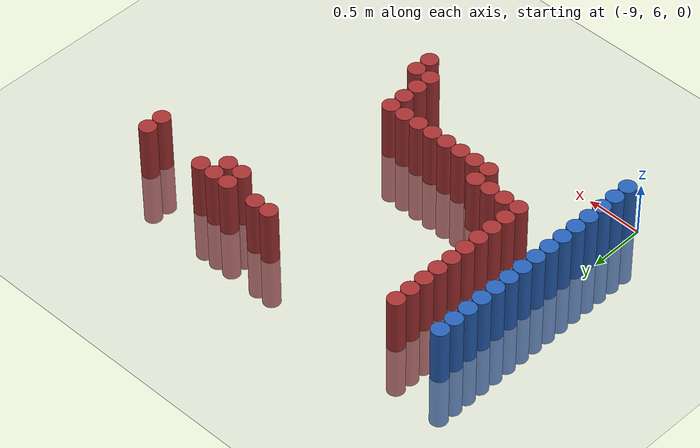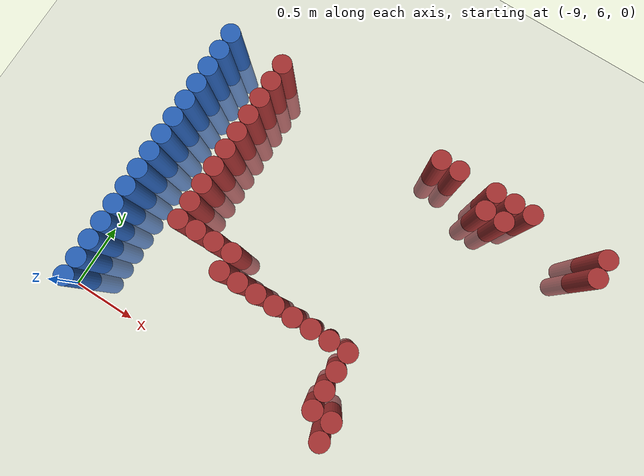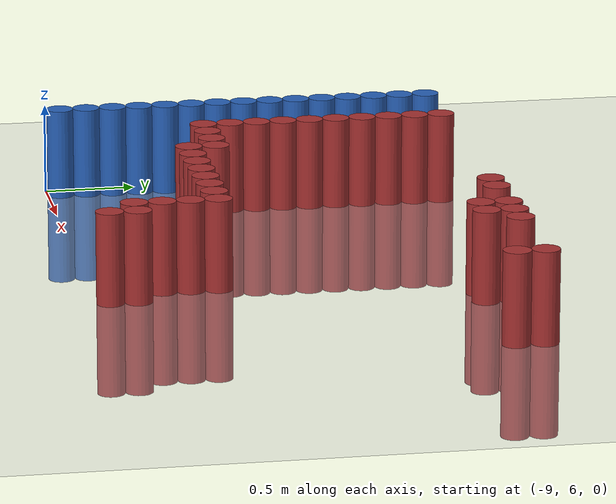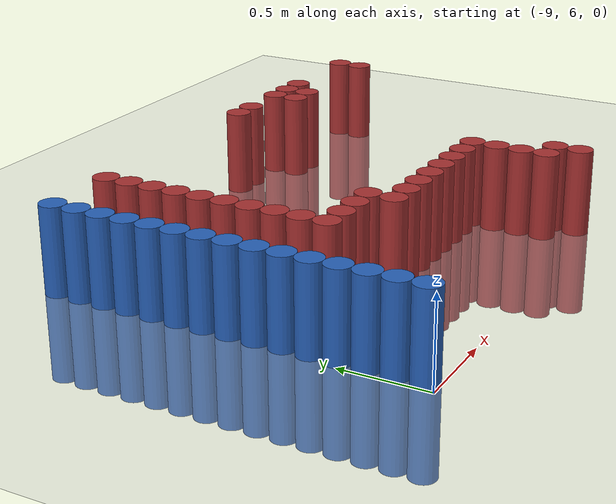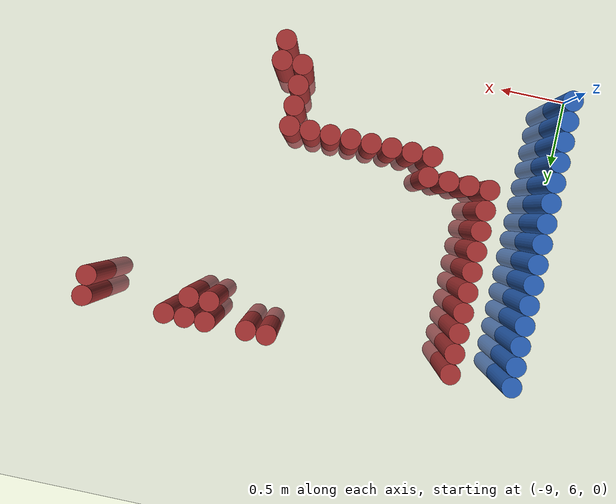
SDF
<sdf version="1.6">
 <world name="default">
  <model name="ground_plane">
   <static>1</static>
   <link name="link">
    <collision name="collision">
     <geometry><plane><normal>0 0 1</normal><size>100 100</size></plane></geometry>
     <surface><friction><ode><mu>100</mu><mu2>50</mu2></ode></friction></surface>
    </collision>
    <visual name="visual">
     <cast_shadows>0</cast_shadows>
     <geometry><plane><normal>0 0 1</normal><size>100 100</size></plane></geometry>
     <material>
      <script><uri>file://media/materials/scripts/gazebo.material</uri><name>Gazebo/Grey</name></script>
     </material>
    </visual>
   </link>
  </model>
  <model name="unit_cylinder_131">
   <static>1</static>
   <pose>-8.925000 6.075000 0.000000 0.000000 0.000000 0.000000</pose>
   <link name="link">
    <inertial>
     <mass>1</mass>
     <inertia><ixx>0.145833</ixx><ixy>0</ixy><ixz>0</ixz><iyy>0.145833</iyy><iyz>0</iyz><izz>0.125</izz></inertia>
    </inertial>
    <collision name="collision">
     <geometry><cylinder><radius>0.075000</radius><length>1</length></cylinder></geometry>
    </collision>
    <visual name="visual">
     <geometry><cylinder><radius>0.075000</radius><length>1</length></cylinder></geometry>
     <material>
      <ambient>0.152000 0.379000 0.720000 1</ambient>
      <diffuse>0.152000 0.379000 0.720000 1</diffuse>
     </material>
     <material>
      <script><name>Gazebo/Grey</name><uri>file://media/materials/scripts/gazebo.material</uri></script>
     </material>
    </visual>
   </link>
  </model>
  <model name="unit_cylinder_132">
   <static>1</static>
   <pose>-8.925000 6.225000 0.000000 0.000000 0.000000 0.000000</pose>
   <link name="link">
    <inertial>
     <mass>1</mass>
     <inertia><ixx>0.145833</ixx><ixy>0</ixy><ixz>0</ixz><iyy>0.145833</iyy><iyz>0</iyz><izz>0.125</izz></inertia>
    </inertial>
    <collision name="collision">
     <geometry><cylinder><radius>0.075000</radius><length>1</length></cylinder></geometry>
    </collision>
    <visual name="visual">
     <geometry><cylinder><radius>0.075000</radius><length>1</length></cylinder></geometry>
     <material>
      <ambient>0.152000 0.379000 0.720000 1</ambient>
      <diffuse>0.152000 0.379000 0.720000 1</diffuse>
     </material>
     <material>
      <script><name>Gazebo/Grey</name><uri>file://media/materials/scripts/gazebo.material</uri></script>
     </material>
    </visual>
   </link>
  </model>
  <model name="unit_cylinder_133">
   <static>1</static>
   <pose>-8.925000 6.375000 0.000000 0.000000 0.000000 0.000000</pose>
   <link name="link">
    <inertial>
     <mass>1</mass>
     <inertia><ixx>0.145833</ixx><ixy>0</ixy><ixz>0</ixz><iyy>0.145833</iyy><iyz>0</iyz><izz>0.125</izz></inertia>
    </inertial>
    <collision name="collision">
     <geometry><cylinder><radius>0.075000</radius><length>1</length></cylinder></geometry>
    </collision>
    <visual name="visual">
     <geometry><cylinder><radius>0.075000</radius><length>1</length></cylinder></geometry>
     <material>
      <ambient>0.152000 0.379000 0.720000 1</ambient>
      <diffuse>0.152000 0.379000 0.720000 1</diffuse>
     </material>
     <material>
      <script><name>Gazebo/Grey</name><uri>file://media/materials/scripts/gazebo.material</uri></script>
     </material>
    </visual>
   </link>
  </model>
  <model name="unit_cylinder_134">
   <static>1</static>
   <pose>-8.925000 6.525000 0.000000 0.000000 0.000000 0.000000</pose>
   <link name="link">
    <inertial>
     <mass>1</mass>
     <inertia><ixx>0.145833</ixx><ixy>0</ixy><ixz>0</ixz><iyy>0.145833</iyy><iyz>0</iyz><izz>0.125</izz></inertia>
    </inertial>
    <collision name="collision">
     <geometry><cylinder><radius>0.075000</radius><length>1</length></cylinder></geometry>
    </collision>
    <visual name="visual">
     <geometry><cylinder><radius>0.075000</radius><length>1</length></cylinder></geometry>
     <material>
      <ambient>0.152000 0.379000 0.720000 1</ambient>
      <diffuse>0.152000 0.379000 0.720000 1</diffuse>
     </material>
     <material>
      <script><name>Gazebo/Grey</name><uri>file://media/materials/scripts/gazebo.material</uri></script>
     </material>
    </visual>
   </link>
  </model>
  <model name="unit_cylinder_135">
   <static>1</static>
   <pose>-8.925000 6.675000 0.000000 0.000000 0.000000 0.000000</pose>
   <link name="link">
    <inertial>
     <mass>1</mass>
     <inertia><ixx>0.145833</ixx><ixy>0</ixy><ixz>0</ixz><iyy>0.145833</iyy><iyz>0</iyz><izz>0.125</izz></inertia>
    </inertial>
    <collision name="collision">
     <geometry><cylinder><radius>0.075000</radius><length>1</length></cylinder></geometry>
    </collision>
    <visual name="visual">
     <geometry><cylinder><radius>0.075000</radius><length>1</length></cylinder></geometry>
     <material>
      <ambient>0.152000 0.379000 0.720000 1</ambient>
      <diffuse>0.152000 0.379000 0.720000 1</diffuse>
     </material>
     <material>
      <script><name>Gazebo/Grey</name><uri>file://media/materials/scripts/gazebo.material</uri></script>
     </material>
    </visual>
   </link>
  </model>
  <model name="unit_cylinder_136">
   <static>1</static>
   <pose>-8.925000 6.825000 0.000000 0.000000 0.000000 0.000000</pose>
   <link name="link">
    <inertial>
     <mass>1</mass>
     <inertia><ixx>0.145833</ixx><ixy>0</ixy><ixz>0</ixz><iyy>0.145833</iyy><iyz>0</iyz><izz>0.125</izz></inertia>
    </inertial>
    <collision name="collision">
     <geometry><cylinder><radius>0.075000</radius><length>1</length></cylinder></geometry>
    </collision>
    <visual name="visual">
     <geometry><cylinder><radius>0.075000</radius><length>1</length></cylinder></geometry>
     <material>
      <ambient>0.152000 0.379000 0.720000 1</ambient>
      <diffuse>0.152000 0.379000 0.720000 1</diffuse>
     </material>
     <material>
      <script><name>Gazebo/Grey</name><uri>file://media/materials/scripts/gazebo.material</uri></script>
     </material>
    </visual>
   </link>
  </model>
  <model name="unit_cylinder_137">
   <static>1</static>
   <pose>-8.925000 6.975000 0.000000 0.000000 0.000000 0.000000</pose>
   <link name="link">
    <inertial>
     <mass>1</mass>
     <inertia><ixx>0.145833</ixx><ixy>0</ixy><ixz>0</ixz><iyy>0.145833</iyy><iyz>0</iyz><izz>0.125</izz></inertia>
    </inertial>
    <collision name="collision">
     <geometry><cylinder><radius>0.075000</radius><length>1</length></cylinder></geometry>
    </collision>
    <visual name="visual">
     <geometry><cylinder><radius>0.075000</radius><length>1</length></cylinder></geometry>
     <material>
      <ambient>0.152000 0.379000 0.720000 1</ambient>
      <diffuse>0.152000 0.379000 0.720000 1</diffuse>
     </material>
     <material>
      <script><name>Gazebo/Grey</name><uri>file://media/materials/scripts/gazebo.material</uri></script>
     </material>
    </visual>
   </link>
  </model>
  <model name="unit_cylinder_138">
   <static>1</static>
   <pose>-8.925000 7.125000 0.000000 0.000000 0.000000 0.000000</pose>
   <link name="link">
    <inertial>
     <mass>1</mass>
     <inertia><ixx>0.145833</ixx><ixy>0</ixy><ixz>0</ixz><iyy>0.145833</iyy><iyz>0</iyz><izz>0.125</izz></inertia>
    </inertial>
    <collision name="collision">
     <geometry><cylinder><radius>0.075000</radius><length>1</length></cylinder></geometry>
    </collision>
    <visual name="visual">
     <geometry><cylinder><radius>0.075000</radius><length>1</length></cylinder></geometry>
     <material>
      <ambient>0.152000 0.379000 0.720000 1</ambient>
      <diffuse>0.152000 0.379000 0.720000 1</diffuse>
     </material>
     <material>
      <script><name>Gazebo/Grey</name><uri>file://media/materials/scripts/gazebo.material</uri></script>
     </material>
    </visual>
   </link>
  </model>
  <model name="unit_cylinder_139">
   <static>1</static>
   <pose>-8.925000 7.275000 0.000000 0.000000 0.000000 0.000000</pose>
   <link name="link">
    <inertial>
     <mass>1</mass>
     <inertia><ixx>0.145833</ixx><ixy>0</ixy><ixz>0</ixz><iyy>0.145833</iyy><iyz>0</iyz><izz>0.125</izz></inertia>
    </inertial>
    <collision name="collision">
     <geometry><cylinder><radius>0.075000</radius><length>1</length></cylinder></geometry>
    </collision>
    <visual name="visual">
     <geometry><cylinder><radius>0.075000</radius><length>1</length></cylinder></geometry>
     <material>
      <ambient>0.152000 0.379000 0.720000 1</ambient>
      <diffuse>0.152000 0.379000 0.720000 1</diffuse>
     </material>
     <material>
      <script><name>Gazebo/Grey</name><uri>file://media/materials/scripts/gazebo.material</uri></script>
     </material>
    </visual>
   </link>
  </model>
  <model name="unit_cylinder_140">
   <static>1</static>
   <pose>-8.925000 7.425000 0.000000 0.000000 0.000000 0.000000</pose>
   <link name="link">
    <inertial>
     <mass>1</mass>
     <inertia><ixx>0.145833</ixx><ixy>0</ixy><ixz>0</ixz><iyy>0.145833</iyy><iyz>0</iyz><izz>0.125</izz></inertia>
    </inertial>
    <collision name="collision">
     <geometry><cylinder><radius>0.075000</radius><length>1</length></cylinder></geometry>
    </collision>
    <visual name="visual">
     <geometry><cylinder><radius>0.075000</radius><length>1</length></cylinder></geometry>
     <material>
      <ambient>0.152000 0.379000 0.720000 1</ambient>
      <diffuse>0.152000 0.379000 0.720000 1</diffuse>
     </material>
     <material>
      <script><name>Gazebo/Grey</name><uri>file://media/materials/scripts/gazebo.material</uri></script>
     </material>
    </visual>
   </link>
  </model>
  <model name="unit_cylinder_141">
   <static>1</static>
   <pose>-8.925000 7.575000 0.000000 0.000000 0.000000 0.000000</pose>
   <link name="link">
    <inertial>
     <mass>1</mass>
     <inertia><ixx>0.145833</ixx><ixy>0</ixy><ixz>0</ixz><iyy>0.145833</iyy><iyz>0</iyz><izz>0.125</izz></inertia>
    </inertial>
    <collision name="collision">
     <geometry><cylinder><radius>0.075000</radius><length>1</length></cylinder></geometry>
    </collision>
    <visual name="visual">
     <geometry><cylinder><radius>0.075000</radius><length>1</length></cylinder></geometry>
     <material>
      <ambient>0.152000 0.379000 0.720000 1</ambient>
      <diffuse>0.152000 0.379000 0.720000 1</diffuse>
     </material>
     <material>
      <script><name>Gazebo/Grey</name><uri>file://media/materials/scripts/gazebo.material</uri></script>
     </material>
    </visual>
   </link>
  </model>
  <model name="unit_cylinder_142">
   <static>1</static>
   <pose>-8.925000 7.725000 0.000000 0.000000 0.000000 0.000000</pose>
   <link name="link">
    <inertial>
     <mass>1</mass>
     <inertia><ixx>0.145833</ixx><ixy>0</ixy><ixz>0</ixz><iyy>0.145833</iyy><iyz>0</iyz><izz>0.125</izz></inertia>
    </inertial>
    <collision name="collision">
     <geometry><cylinder><radius>0.075000</radius><length>1</length></cylinder></geometry>
    </collision>
    <visual name="visual">
     <geometry><cylinder><radius>0.075000</radius><length>1</length></cylinder></geometry>
     <material>
      <ambient>0.152000 0.379000 0.720000 1</ambient>
      <diffuse>0.152000 0.379000 0.720000 1</diffuse>
     </material>
     <material>
      <script><name>Gazebo/Grey</name><uri>file://media/materials/scripts/gazebo.material</uri></script>
     </material>
    </visual>
   </link>
  </model>
  <model name="unit_cylinder_143">
   <static>1</static>
   <pose>-8.925000 7.875000 0.000000 0.000000 0.000000 0.000000</pose>
   <link name="link">
    <inertial>
     <mass>1</mass>
     <inertia><ixx>0.145833</ixx><ixy>0</ixy><ixz>0</ixz><iyy>0.145833</iyy><iyz>0</iyz><izz>0.125</izz></inertia>
    </inertial>
    <collision name="collision">
     <geometry><cylinder><radius>0.075000</radius><length>1</length></cylinder></geometry>
    </collision>
    <visual name="visual">
     <geometry><cylinder><radius>0.075000</radius><length>1</length></cylinder></geometry>
     <material>
      <ambient>0.152000 0.379000 0.720000 1</ambient>
      <diffuse>0.152000 0.379000 0.720000 1</diffuse>
     </material>
     <material>
      <script><name>Gazebo/Grey</name><uri>file://media/materials/scripts/gazebo.material</uri></script>
     </material>
    </visual>
   </link>
  </model>
  <model name="unit_cylinder_144">
   <static>1</static>
   <pose>-8.925000 8.025000 0.000000 0.000000 0.000000 0.000000</pose>
   <link name="link">
    <inertial>
     <mass>1</mass>
     <inertia><ixx>0.145833</ixx><ixy>0</ixy><ixz>0</ixz><iyy>0.145833</iyy><iyz>0</iyz><izz>0.125</izz></inertia>
    </inertial>
    <collision name="collision">
     <geometry><cylinder><radius>0.075000</radius><length>1</length></cylinder></geometry>
    </collision>
    <visual name="visual">
     <geometry><cylinder><radius>0.075000</radius><length>1</length></cylinder></geometry>
     <material>
      <ambient>0.152000 0.379000 0.720000 1</ambient>
      <diffuse>0.152000 0.379000 0.720000 1</diffuse>
     </material>
     <material>
      <script><name>Gazebo/Grey</name><uri>file://media/materials/scripts/gazebo.material</uri></script>
     </material>
    </visual>
   </link>
  </model>
  <model name="unit_cylinder_145">
   <static>1</static>
   <pose>-8.925000 8.175000 0.000000 0.000000 0.000000 0.000000</pose>
   <link name="link">
    <inertial>
     <mass>1</mass>
     <inertia><ixx>0.145833</ixx><ixy>0</ixy><ixz>0</ixz><iyy>0.145833</iyy><iyz>0</iyz><izz>0.125</izz></inertia>
    </inertial>
    <collision name="collision">
     <geometry><cylinder><radius>0.075000</radius><length>1</length></cylinder></geometry>
    </collision>
    <visual name="visual">
     <geometry><cylinder><radius>0.075000</radius><length>1</length></cylinder></geometry>
     <material>
      <ambient>0.152000 0.379000 0.720000 1</ambient>
      <diffuse>0.152000 0.379000 0.720000 1</diffuse>
     </material>
     <material>
      <script><name>Gazebo/Grey</name><uri>file://media/materials/scripts/gazebo.material</uri></script>
     </material>
    </visual>
   </link>
  </model>
  <model name="unit_cylinder_160">
   <static>1</static>
   <pose>-8.475000 6.825000 0.000000 0.000000 0.000000 0.000000</pose>
   <link name="link">
    <inertial>
     <mass>1</mass>
     <inertia><ixx>0.145833</ixx><ixy>0</ixy><ixz>0</ixz><iyy>0.145833</iyy><iyz>0</iyz><izz>0.125</izz></inertia>
    </inertial>
    <collision name="collision">
     <geometry><cylinder><radius>0.075000</radius><length>1</length></cylinder></geometry>
    </collision>
    <visual name="visual">
     <geometry><cylinder><radius>0.075000</radius><length>1</length></cylinder></geometry>
     <material>
      <ambient>0.648000 0.192000 0.192000 1</ambient>
      <diffuse>0.648000 0.192000 0.192000 1</diffuse>
     </material>
     <material>
      <script><name>Gazebo/Grey</name><uri>file://media/materials/scripts/gazebo.material</uri></script>
     </material>
    </visual>
   </link>
  </model>
  <model name="unit_cylinder_161">
   <static>1</static>
   <pose>-8.475000 6.975000 0.000000 0.000000 0.000000 0.000000</pose>
   <link name="link">
    <inertial>
     <mass>1</mass>
     <inertia><ixx>0.145833</ixx><ixy>0</ixy><ixz>0</ixz><iyy>0.145833</iyy><iyz>0</iyz><izz>0.125</izz></inertia>
    </inertial>
    <collision name="collision">
     <geometry><cylinder><radius>0.075000</radius><length>1</length></cylinder></geometry>
    </collision>
    <visual name="visual">
     <geometry><cylinder><radius>0.075000</radius><length>1</length></cylinder></geometry>
     <material>
      <ambient>0.648000 0.192000 0.192000 1</ambient>
      <diffuse>0.648000 0.192000 0.192000 1</diffuse>
     </material>
     <material>
      <script><name>Gazebo/Grey</name><uri>file://media/materials/scripts/gazebo.material</uri></script>
     </material>
    </visual>
   </link>
  </model>
  <model name="unit_cylinder_162">
   <static>1</static>
   <pose>-8.475000 7.125000 0.000000 0.000000 0.000000 0.000000</pose>
   <link name="link">
    <inertial>
     <mass>1</mass>
     <inertia><ixx>0.145833</ixx><ixy>0</ixy><ixz>0</ixz><iyy>0.145833</iyy><iyz>0</iyz><izz>0.125</izz></inertia>
    </inertial>
    <collision name="collision">
     <geometry><cylinder><radius>0.075000</radius><length>1</length></cylinder></geometry>
    </collision>
    <visual name="visual">
     <geometry><cylinder><radius>0.075000</radius><length>1</length></cylinder></geometry>
     <material>
      <ambient>0.648000 0.192000 0.192000 1</ambient>
      <diffuse>0.648000 0.192000 0.192000 1</diffuse>
     </material>
     <material>
      <script><name>Gazebo/Grey</name><uri>file://media/materials/scripts/gazebo.material</uri></script>
     </material>
    </visual>
   </link>
  </model>
  <model name="unit_cylinder_163">
   <static>1</static>
   <pose>-8.475000 7.275000 0.000000 0.000000 0.000000 0.000000</pose>
   <link name="link">
    <inertial>
     <mass>1</mass>
     <inertia><ixx>0.145833</ixx><ixy>0</ixy><ixz>0</ixz><iyy>0.145833</iyy><iyz>0</iyz><izz>0.125</izz></inertia>
    </inertial>
    <collision name="collision">
     <geometry><cylinder><radius>0.075000</radius><length>1</length></cylinder></geometry>
    </collision>
    <visual name="visual">
     <geometry><cylinder><radius>0.075000</radius><length>1</length></cylinder></geometry>
     <material>
      <ambient>0.648000 0.192000 0.192000 1</ambient>
      <diffuse>0.648000 0.192000 0.192000 1</diffuse>
     </material>
     <material>
      <script><name>Gazebo/Grey</name><uri>file://media/materials/scripts/gazebo.material</uri></script>
     </material>
    </visual>
   </link>
  </model>
  <model name="unit_cylinder_164">
   <static>1</static>
   <pose>-8.475000 7.425000 0.000000 0.000000 0.000000 0.000000</pose>
   <link name="link">
    <inertial>
     <mass>1</mass>
     <inertia><ixx>0.145833</ixx><ixy>0</ixy><ixz>0</ixz><iyy>0.145833</iyy><iyz>0</iyz><izz>0.125</izz></inertia>
    </inertial>
    <collision name="collision">
     <geometry><cylinder><radius>0.075000</radius><length>1</length></cylinder></geometry>
    </collision>
    <visual name="visual">
     <geometry><cylinder><radius>0.075000</radius><length>1</length></cylinder></geometry>
     <material>
      <ambient>0.648000 0.192000 0.192000 1</ambient>
      <diffuse>0.648000 0.192000 0.192000 1</diffuse>
     </material>
     <material>
      <script><name>Gazebo/Grey</name><uri>file://media/materials/scripts/gazebo.material</uri></script>
     </material>
    </visual>
   </link>
  </model>
  <model name="unit_cylinder_165">
   <static>1</static>
   <pose>-8.475000 7.575000 0.000000 0.000000 0.000000 0.000000</pose>
   <link name="link">
    <inertial>
     <mass>1</mass>
     <inertia><ixx>0.145833</ixx><ixy>0</ixy><ixz>0</ixz><iyy>0.145833</iyy><iyz>0</iyz><izz>0.125</izz></inertia>
    </inertial>
    <collision name="collision">
     <geometry><cylinder><radius>0.075000</radius><length>1</length></cylinder></geometry>
    </collision>
    <visual name="visual">
     <geometry><cylinder><radius>0.075000</radius><length>1</length></cylinder></geometry>
     <material>
      <ambient>0.648000 0.192000 0.192000 1</ambient>
      <diffuse>0.648000 0.192000 0.192000 1</diffuse>
     </material>
     <material>
      <script><name>Gazebo/Grey</name><uri>file://media/materials/scripts/gazebo.material</uri></script>
     </material>
    </visual>
   </link>
  </model>
  <model name="unit_cylinder_166">
   <static>1</static>
   <pose>-8.475000 7.725000 0.000000 0.000000 0.000000 0.000000</pose>
   <link name="link">
    <inertial>
     <mass>1</mass>
     <inertia><ixx>0.145833</ixx><ixy>0</ixy><ixz>0</ixz><iyy>0.145833</iyy><iyz>0</iyz><izz>0.125</izz></inertia>
    </inertial>
    <collision name="collision">
     <geometry><cylinder><radius>0.075000</radius><length>1</length></cylinder></geometry>
    </collision>
    <visual name="visual">
     <geometry><cylinder><radius>0.075000</radius><length>1</length></cylinder></geometry>
     <material>
      <ambient>0.648000 0.192000 0.192000 1</ambient>
      <diffuse>0.648000 0.192000 0.192000 1</diffuse>
     </material>
     <material>
      <script><name>Gazebo/Grey</name><uri>file://media/materials/scripts/gazebo.material</uri></script>
     </material>
    </visual>
   </link>
  </model>
  <model name="unit_cylinder_167">
   <static>1</static>
   <pose>-8.475000 7.875000 0.000000 0.000000 0.000000 0.000000</pose>
   <link name="link">
    <inertial>
     <mass>1</mass>
     <inertia><ixx>0.145833</ixx><ixy>0</ixy><ixz>0</ixz><iyy>0.145833</iyy><iyz>0</iyz><izz>0.125</izz></inertia>
    </inertial>
    <collision name="collision">
     <geometry><cylinder><radius>0.075000</radius><length>1</length></cylinder></geometry>
    </collision>
    <visual name="visual">
     <geometry><cylinder><radius>0.075000</radius><length>1</length></cylinder></geometry>
     <material>
      <ambient>0.648000 0.192000 0.192000 1</ambient>
      <diffuse>0.648000 0.192000 0.192000 1</diffuse>
     </material>
     <material>
      <script><name>Gazebo/Grey</name><uri>file://media/materials/scripts/gazebo.material</uri></script>
     </material>
    </visual>
   </link>
  </model>
  <model name="unit_cylinder_168">
   <static>1</static>
   <pose>-8.475000 8.025000 0.000000 0.000000 0.000000 0.000000</pose>
   <link name="link">
    <inertial>
     <mass>1</mass>
     <inertia><ixx>0.145833</ixx><ixy>0</ixy><ixz>0</ixz><iyy>0.145833</iyy><iyz>0</iyz><izz>0.125</izz></inertia>
    </inertial>
    <collision name="collision">
     <geometry><cylinder><radius>0.075000</radius><length>1</length></cylinder></geometry>
    </collision>
    <visual name="visual">
     <geometry><cylinder><radius>0.075000</radius><length>1</length></cylinder></geometry>
     <material>
      <ambient>0.648000 0.192000 0.192000 1</ambient>
      <diffuse>0.648000 0.192000 0.192000 1</diffuse>
     </material>
     <material>
      <script><name>Gazebo/Grey</name><uri>file://media/materials/scripts/gazebo.material</uri></script>
     </material>
    </visual>
   </link>
  </model>
  <model name="unit_cylinder_169">
   <static>1</static>
   <pose>-8.475000 8.175000 0.000000 0.000000 0.000000 0.000000</pose>
   <link name="link">
    <inertial>
     <mass>1</mass>
     <inertia><ixx>0.145833</ixx><ixy>0</ixy><ixz>0</ixz><iyy>0.145833</iyy><iyz>0</iyz><izz>0.125</izz></inertia>
    </inertial>
    <collision name="collision">
     <geometry><cylinder><radius>0.075000</radius><length>1</length></cylinder></geometry>
    </collision>
    <visual name="visual">
     <geometry><cylinder><radius>0.075000</radius><length>1</length></cylinder></geometry>
     <material>
      <ambient>0.648000 0.192000 0.192000 1</ambient>
      <diffuse>0.648000 0.192000 0.192000 1</diffuse>
     </material>
     <material>
      <script><name>Gazebo/Grey</name><uri>file://media/materials/scripts/gazebo.material</uri></script>
     </material>
    </visual>
   </link>
  </model>
  <model name="unit_cylinder_180">
   <static>1</static>
   <pose>-8.325000 6.825000 0.000000 0.000000 0.000000 0.000000</pose>
   <link name="link">
    <inertial>
     <mass>1</mass>
     <inertia><ixx>0.145833</ixx><ixy>0</ixy><ixz>0</ixz><iyy>0.145833</iyy><iyz>0</iyz><izz>0.125</izz></inertia>
    </inertial>
    <collision name="collision">
     <geometry><cylinder><radius>0.075000</radius><length>1</length></cylinder></geometry>
    </collision>
    <visual name="visual">
     <geometry><cylinder><radius>0.075000</radius><length>1</length></cylinder></geometry>
     <material>
      <ambient>0.648000 0.192000 0.192000 1</ambient>
      <diffuse>0.648000 0.192000 0.192000 1</diffuse>
     </material>
     <material>
      <script><name>Gazebo/Grey</name><uri>file://media/materials/scripts/gazebo.material</uri></script>
     </material>
    </visual>
   </link>
  </model>
  <model name="unit_cylinder_182">
   <static>1</static>
   <pose>-8.175000 6.825000 0.000000 0.000000 0.000000 0.000000</pose>
   <link name="link">
    <inertial>
     <mass>1</mass>
     <inertia><ixx>0.145833</ixx><ixy>0</ixy><ixz>0</ixz><iyy>0.145833</iyy><iyz>0</iyz><izz>0.125</izz></inertia>
    </inertial>
    <collision name="collision">
     <geometry><cylinder><radius>0.075000</radius><length>1</length></cylinder></geometry>
    </collision>
    <visual name="visual">
     <geometry><cylinder><radius>0.075000</radius><length>1</length></cylinder></geometry>
     <material>
      <ambient>0.648000 0.192000 0.192000 1</ambient>
      <diffuse>0.648000 0.192000 0.192000 1</diffuse>
     </material>
     <material>
      <script><name>Gazebo/Grey</name><uri>file://media/materials/scripts/gazebo.material</uri></script>
     </material>
    </visual>
   </link>
  </model>
  <model name="unit_cylinder_184">
   <static>1</static>
   <pose>-8.025000 6.675000 0.000000 0.000000 0.000000 0.000000</pose>
   <link name="link">
    <inertial>
     <mass>1</mass>
     <inertia><ixx>0.145833</ixx><ixy>0</ixy><ixz>0</ixz><iyy>0.145833</iyy><iyz>0</iyz><izz>0.125</izz></inertia>
    </inertial>
    <collision name="collision">
     <geometry><cylinder><radius>0.075000</radius><length>1</length></cylinder></geometry>
    </collision>
    <visual name="visual">
     <geometry><cylinder><radius>0.075000</radius><length>1</length></cylinder></geometry>
     <material>
      <ambient>0.648000 0.192000 0.192000 1</ambient>
      <diffuse>0.648000 0.192000 0.192000 1</diffuse>
     </material>
     <material>
      <script><name>Gazebo/Grey</name><uri>file://media/materials/scripts/gazebo.material</uri></script>
     </material>
    </visual>
   </link>
  </model>
  <model name="unit_cylinder_185">
   <static>1</static>
   <pose>-8.025000 6.825000 0.000000 0.000000 0.000000 0.000000</pose>
   <link name="link">
    <inertial>
     <mass>1</mass>
     <inertia><ixx>0.145833</ixx><ixy>0</ixy><ixz>0</ixz><iyy>0.145833</iyy><iyz>0</iyz><izz>0.125</izz></inertia>
    </inertial>
    <collision name="collision">
     <geometry><cylinder><radius>0.075000</radius><length>1</length></cylinder></geometry>
    </collision>
    <visual name="visual">
     <geometry><cylinder><radius>0.075000</radius><length>1</length></cylinder></geometry>
     <material>
      <ambient>0.648000 0.192000 0.192000 1</ambient>
      <diffuse>0.648000 0.192000 0.192000 1</diffuse>
     </material>
     <material>
      <script><name>Gazebo/Grey</name><uri>file://media/materials/scripts/gazebo.material</uri></script>
     </material>
    </visual>
   </link>
  </model>
  <model name="unit_cylinder_187">
   <static>1</static>
   <pose>-7.875000 6.675000 0.000000 0.000000 0.000000 0.000000</pose>
   <link name="link">
    <inertial>
     <mass>1</mass>
     <inertia><ixx>0.145833</ixx><ixy>0</ixy><ixz>0</ixz><iyy>0.145833</iyy><iyz>0</iyz><izz>0.125</izz></inertia>
    </inertial>
    <collision name="collision">
     <geometry><cylinder><radius>0.075000</radius><length>1</length></cylinder></geometry>
    </collision>
    <visual name="visual">
     <geometry><cylinder><radius>0.075000</radius><length>1</length></cylinder></geometry>
     <material>
      <ambient>0.648000 0.192000 0.192000 1</ambient>
      <diffuse>0.648000 0.192000 0.192000 1</diffuse>
     </material>
     <material>
      <script><name>Gazebo/Grey</name><uri>file://media/materials/scripts/gazebo.material</uri></script>
     </material>
    </visual>
   </link>
  </model>
  <model name="unit_cylinder_189">
   <static>1</static>
   <pose>-7.725000 6.675000 0.000000 0.000000 0.000000 0.000000</pose>
   <link name="link">
    <inertial>
     <mass>1</mass>
     <inertia><ixx>0.145833</ixx><ixy>0</ixy><ixz>0</ixz><iyy>0.145833</iyy><iyz>0</iyz><izz>0.125</izz></inertia>
    </inertial>
    <collision name="collision">
     <geometry><cylinder><radius>0.075000</radius><length>1</length></cylinder></geometry>
    </collision>
    <visual name="visual">
     <geometry><cylinder><radius>0.075000</radius><length>1</length></cylinder></geometry>
     <material>
      <ambient>0.648000 0.192000 0.192000 1</ambient>
      <diffuse>0.648000 0.192000 0.192000 1</diffuse>
     </material>
     <material>
      <script><name>Gazebo/Grey</name><uri>file://media/materials/scripts/gazebo.material</uri></script>
     </material>
    </visual>
   </link>
  </model>
  <model name="unit_cylinder_191">
   <static>1</static>
   <pose>-7.575000 6.675000 0.000000 0.000000 0.000000 0.000000</pose>
   <link name="link">
    <inertial>
     <mass>1</mass>
     <inertia><ixx>0.145833</ixx><ixy>0</ixy><ixz>0</ixz><iyy>0.145833</iyy><iyz>0</iyz><izz>0.125</izz></inertia>
    </inertial>
    <collision name="collision">
     <geometry><cylinder><radius>0.075000</radius><length>1</length></cylinder></geometry>
    </collision>
    <visual name="visual">
     <geometry><cylinder><radius>0.075000</radius><length>1</length></cylinder></geometry>
     <material>
      <ambient>0.648000 0.192000 0.192000 1</ambient>
      <diffuse>0.648000 0.192000 0.192000 1</diffuse>
     </material>
     <material>
      <script><name>Gazebo/Grey</name><uri>file://media/materials/scripts/gazebo.material</uri></script>
     </material>
    </visual>
   </link>
  </model>
  <model name="unit_cylinder_193">
   <static>1</static>
   <pose>-7.425000 6.675000 0.000000 0.000000 0.000000 0.000000</pose>
   <link name="link">
    <inertial>
     <mass>1</mass>
     <inertia><ixx>0.145833</ixx><ixy>0</ixy><ixz>0</ixz><iyy>0.145833</iyy><iyz>0</iyz><izz>0.125</izz></inertia>
    </inertial>
    <collision name="collision">
     <geometry><cylinder><radius>0.075000</radius><length>1</length></cylinder></geometry>
    </collision>
    <visual name="visual">
     <geometry><cylinder><radius>0.075000</radius><length>1</length></cylinder></geometry>
     <material>
      <ambient>0.648000 0.192000 0.192000 1</ambient>
      <diffuse>0.648000 0.192000 0.192000 1</diffuse>
     </material>
     <material>
      <script><name>Gazebo/Grey</name><uri>file://media/materials/scripts/gazebo.material</uri></script>
     </material>
    </visual>
   </link>
  </model>
  <model name="unit_cylinder_195">
   <static>1</static>
   <pose>-7.275000 6.675000 0.000000 0.000000 0.000000 0.000000</pose>
   <link name="link">
    <inertial>
     <mass>1</mass>
     <inertia><ixx>0.145833</ixx><ixy>0</ixy><ixz>0</ixz><iyy>0.145833</iyy><iyz>0</iyz><izz>0.125</izz></inertia>
    </inertial>
    <collision name="collision">
     <geometry><cylinder><radius>0.075000</radius><length>1</length></cylinder></geometry>
    </collision>
    <visual name="visual">
     <geometry><cylinder><radius>0.075000</radius><length>1</length></cylinder></geometry>
     <material>
      <ambient>0.648000 0.192000 0.192000 1</ambient>
      <diffuse>0.648000 0.192000 0.192000 1</diffuse>
     </material>
     <material>
      <script><name>Gazebo/Grey</name><uri>file://media/materials/scripts/gazebo.material</uri></script>
     </material>
    </visual>
   </link>
  </model>
  <model name="unit_cylinder_197">
   <static>1</static>
   <pose>-7.125000 6.675000 0.000000 0.000000 0.000000 0.000000</pose>
   <link name="link">
    <inertial>
     <mass>1</mass>
     <inertia><ixx>0.145833</ixx><ixy>0</ixy><ixz>0</ixz><iyy>0.145833</iyy><iyz>0</iyz><izz>0.125</izz></inertia>
    </inertial>
    <collision name="collision">
     <geometry><cylinder><radius>0.075000</radius><length>1</length></cylinder></geometry>
    </collision>
    <visual name="visual">
     <geometry><cylinder><radius>0.075000</radius><length>1</length></cylinder></geometry>
     <material>
      <ambient>0.648000 0.192000 0.192000 1</ambient>
      <diffuse>0.648000 0.192000 0.192000 1</diffuse>
     </material>
     <material>
      <script><name>Gazebo/Grey</name><uri>file://media/materials/scripts/gazebo.material</uri></script>
     </material>
    </visual>
   </link>
  </model>
  <model name="unit_cylinder_198">
   <static>1</static>
   <pose>-7.125000 8.175000 0.000000 0.000000 0.000000 0.000000</pose>
   <link name="link">
    <inertial>
     <mass>1</mass>
     <inertia><ixx>0.145833</ixx><ixy>0</ixy><ixz>0</ixz><iyy>0.145833</iyy><iyz>0</iyz><izz>0.125</izz></inertia>
    </inertial>
    <collision name="collision">
     <geometry><cylinder><radius>0.075000</radius><length>1</length></cylinder></geometry>
    </collision>
    <visual name="visual">
     <geometry><cylinder><radius>0.075000</radius><length>1</length></cylinder></geometry>
     <material>
      <ambient>0.648000 0.192000 0.192000 1</ambient>
      <diffuse>0.648000 0.192000 0.192000 1</diffuse>
     </material>
     <material>
      <script><name>Gazebo/Grey</name><uri>file://media/materials/scripts/gazebo.material</uri></script>
     </material>
    </visual>
   </link>
  </model>
  <model name="unit_cylinder_201">
   <static>1</static>
   <pose>-6.975000 6.225000 0.000000 0.000000 0.000000 0.000000</pose>
   <link name="link">
    <inertial>
     <mass>1</mass>
     <inertia><ixx>0.145833</ixx><ixy>0</ixy><ixz>0</ixz><iyy>0.145833</iyy><iyz>0</iyz><izz>0.125</izz></inertia>
    </inertial>
    <collision name="collision">
     <geometry><cylinder><radius>0.075000</radius><length>1</length></cylinder></geometry>
    </collision>
    <visual name="visual">
     <geometry><cylinder><radius>0.075000</radius><length>1</length></cylinder></geometry>
     <material>
      <ambient>0.648000 0.192000 0.192000 1</ambient>
      <diffuse>0.648000 0.192000 0.192000 1</diffuse>
     </material>
     <material>
      <script><name>Gazebo/Grey</name><uri>file://media/materials/scripts/gazebo.material</uri></script>
     </material>
    </visual>
   </link>
  </model>
  <model name="unit_cylinder_202">
   <static>1</static>
   <pose>-6.975000 6.375000 0.000000 0.000000 0.000000 0.000000</pose>
   <link name="link">
    <inertial>
     <mass>1</mass>
     <inertia><ixx>0.145833</ixx><ixy>0</ixy><ixz>0</ixz><iyy>0.145833</iyy><iyz>0</iyz><izz>0.125</izz></inertia>
    </inertial>
    <collision name="collision">
     <geometry><cylinder><radius>0.075000</radius><length>1</length></cylinder></geometry>
    </collision>
    <visual name="visual">
     <geometry><cylinder><radius>0.075000</radius><length>1</length></cylinder></geometry>
     <material>
      <ambient>0.648000 0.192000 0.192000 1</ambient>
      <diffuse>0.648000 0.192000 0.192000 1</diffuse>
     </material>
     <material>
      <script><name>Gazebo/Grey</name><uri>file://media/materials/scripts/gazebo.material</uri></script>
     </material>
    </visual>
   </link>
  </model>
  <model name="unit_cylinder_203">
   <static>1</static>
   <pose>-6.975000 6.525000 0.000000 0.000000 0.000000 0.000000</pose>
   <link name="link">
    <inertial>
     <mass>1</mass>
     <inertia><ixx>0.145833</ixx><ixy>0</ixy><ixz>0</ixz><iyy>0.145833</iyy><iyz>0</iyz><izz>0.125</izz></inertia>
    </inertial>
    <collision name="collision">
     <geometry><cylinder><radius>0.075000</radius><length>1</length></cylinder></geometry>
    </collision>
    <visual name="visual">
     <geometry><cylinder><radius>0.075000</radius><length>1</length></cylinder></geometry>
     <material>
      <ambient>0.648000 0.192000 0.192000 1</ambient>
      <diffuse>0.648000 0.192000 0.192000 1</diffuse>
     </material>
     <material>
      <script><name>Gazebo/Grey</name><uri>file://media/materials/scripts/gazebo.material</uri></script>
     </material>
    </visual>
   </link>
  </model>
  <model name="unit_cylinder_204">
   <static>1</static>
   <pose>-6.975000 6.675000 0.000000 0.000000 0.000000 0.000000</pose>
   <link name="link">
    <inertial>
     <mass>1</mass>
     <inertia><ixx>0.145833</ixx><ixy>0</ixy><ixz>0</ixz><iyy>0.145833</iyy><iyz>0</iyz><izz>0.125</izz></inertia>
    </inertial>
    <collision name="collision">
     <geometry><cylinder><radius>0.075000</radius><length>1</length></cylinder></geometry>
    </collision>
    <visual name="visual">
     <geometry><cylinder><radius>0.075000</radius><length>1</length></cylinder></geometry>
     <material>
      <ambient>0.648000 0.192000 0.192000 1</ambient>
      <diffuse>0.648000 0.192000 0.192000 1</diffuse>
     </material>
     <material>
      <script><name>Gazebo/Grey</name><uri>file://media/materials/scripts/gazebo.material</uri></script>
     </material>
    </visual>
   </link>
  </model>
  <model name="unit_cylinder_205">
   <static>1</static>
   <pose>-6.975000 8.175000 0.000000 0.000000 0.000000 0.000000</pose>
   <link name="link">
    <inertial>
     <mass>1</mass>
     <inertia><ixx>0.145833</ixx><ixy>0</ixy><ixz>0</ixz><iyy>0.145833</iyy><iyz>0</iyz><izz>0.125</izz></inertia>
    </inertial>
    <collision name="collision">
     <geometry><cylinder><radius>0.075000</radius><length>1</length></cylinder></geometry>
    </collision>
    <visual name="visual">
     <geometry><cylinder><radius>0.075000</radius><length>1</length></cylinder></geometry>
     <material>
      <ambient>0.648000 0.192000 0.192000 1</ambient>
      <diffuse>0.648000 0.192000 0.192000 1</diffuse>
     </material>
     <material>
      <script><name>Gazebo/Grey</name><uri>file://media/materials/scripts/gazebo.material</uri></script>
     </material>
    </visual>
   </link>
  </model>
  <model name="unit_cylinder_215">
   <static>1</static>
   <pose>-6.825000 6.075000 0.000000 0.000000 0.000000 0.000000</pose>
   <link name="link">
    <inertial>
     <mass>1</mass>
     <inertia><ixx>0.145833</ixx><ixy>0</ixy><ixz>0</ixz><iyy>0.145833</iyy><iyz>0</iyz><izz>0.125</izz></inertia>
    </inertial>
    <collision name="collision">
     <geometry><cylinder><radius>0.075000</radius><length>1</length></cylinder></geometry>
    </collision>
    <visual name="visual">
     <geometry><cylinder><radius>0.075000</radius><length>1</length></cylinder></geometry>
     <material>
      <ambient>0.648000 0.192000 0.192000 1</ambient>
      <diffuse>0.648000 0.192000 0.192000 1</diffuse>
     </material>
     <material>
      <script><name>Gazebo/Grey</name><uri>file://media/materials/scripts/gazebo.material</uri></script>
     </material>
    </visual>
   </link>
  </model>
  <model name="unit_cylinder_216">
   <static>1</static>
   <pose>-6.825000 6.225000 0.000000 0.000000 0.000000 0.000000</pose>
   <link name="link">
    <inertial>
     <mass>1</mass>
     <inertia><ixx>0.145833</ixx><ixy>0</ixy><ixz>0</ixz><iyy>0.145833</iyy><iyz>0</iyz><izz>0.125</izz></inertia>
    </inertial>
    <collision name="collision">
     <geometry><cylinder><radius>0.075000</radius><length>1</length></cylinder></geometry>
    </collision>
    <visual name="visual">
     <geometry><cylinder><radius>0.075000</radius><length>1</length></cylinder></geometry>
     <material>
      <ambient>0.648000 0.192000 0.192000 1</ambient>
      <diffuse>0.648000 0.192000 0.192000 1</diffuse>
     </material>
     <material>
      <script><name>Gazebo/Grey</name><uri>file://media/materials/scripts/gazebo.material</uri></script>
     </material>
    </visual>
   </link>
  </model>
  <model name="unit_cylinder_224">
   <static>1</static>
   <pose>-6.675000 8.025000 0.000000 0.000000 0.000000 0.000000</pose>
   <link name="link">
    <inertial>
     <mass>1</mass>
     <inertia><ixx>0.145833</ixx><ixy>0</ixy><ixz>0</ixz><iyy>0.145833</iyy><iyz>0</iyz><izz>0.125</izz></inertia>
    </inertial>
    <collision name="collision">
     <geometry><cylinder><radius>0.075000</radius><length>1</length></cylinder></geometry>
    </collision>
    <visual name="visual">
     <geometry><cylinder><radius>0.075000</radius><length>1</length></cylinder></geometry>
     <material>
      <ambient>0.648000 0.192000 0.192000 1</ambient>
      <diffuse>0.648000 0.192000 0.192000 1</diffuse>
     </material>
     <material>
      <script><name>Gazebo/Grey</name><uri>file://media/materials/scripts/gazebo.material</uri></script>
     </material>
    </visual>
   </link>
  </model>
  <model name="unit_cylinder_225">
   <static>1</static>
   <pose>-6.675000 8.175000 0.000000 0.000000 0.000000 0.000000</pose>
   <link name="link">
    <inertial>
     <mass>1</mass>
     <inertia><ixx>0.145833</ixx><ixy>0</ixy><ixz>0</ixz><iyy>0.145833</iyy><iyz>0</iyz><izz>0.125</izz></inertia>
    </inertial>
    <collision name="collision">
     <geometry><cylinder><radius>0.075000</radius><length>1</length></cylinder></geometry>
    </collision>
    <visual name="visual">
     <geometry><cylinder><radius>0.075000</radius><length>1</length></cylinder></geometry>
     <material>
      <ambient>0.648000 0.192000 0.192000 1</ambient>
      <diffuse>0.648000 0.192000 0.192000 1</diffuse>
     </material>
     <material>
      <script><name>Gazebo/Grey</name><uri>file://media/materials/scripts/gazebo.material</uri></script>
     </material>
    </visual>
   </link>
  </model>
  <model name="unit_cylinder_233">
   <static>1</static>
   <pose>-6.525000 8.025000 0.000000 0.000000 0.000000 0.000000</pose>
   <link name="link">
    <inertial>
     <mass>1</mass>
     <inertia><ixx>0.145833</ixx><ixy>0</ixy><ixz>0</ixz><iyy>0.145833</iyy><iyz>0</iyz><izz>0.125</izz></inertia>
    </inertial>
    <collision name="collision">
     <geometry><cylinder><radius>0.075000</radius><length>1</length></cylinder></geometry>
    </collision>
    <visual name="visual">
     <geometry><cylinder><radius>0.075000</radius><length>1</length></cylinder></geometry>
     <material>
      <ambient>0.648000 0.192000 0.192000 1</ambient>
      <diffuse>0.648000 0.192000 0.192000 1</diffuse>
     </material>
     <material>
      <script><name>Gazebo/Grey</name><uri>file://media/materials/scripts/gazebo.material</uri></script>
     </material>
    </visual>
   </link>
  </model>
  <model name="unit_cylinder_234">
   <static>1</static>
   <pose>-6.525000 8.175000 0.000000 0.000000 0.000000 0.000000</pose>
   <link name="link">
    <inertial>
     <mass>1</mass>
     <inertia><ixx>0.145833</ixx><ixy>0</ixy><ixz>0</ixz><iyy>0.145833</iyy><iyz>0</iyz><izz>0.125</izz></inertia>
    </inertial>
    <collision name="collision">
     <geometry><cylinder><radius>0.075000</radius><length>1</length></cylinder></geometry>
    </collision>
    <visual name="visual">
     <geometry><cylinder><radius>0.075000</radius><length>1</length></cylinder></geometry>
     <material>
      <ambient>0.648000 0.192000 0.192000 1</ambient>
      <diffuse>0.648000 0.192000 0.192000 1</diffuse>
     </material>
     <material>
      <script><name>Gazebo/Grey</name><uri>file://media/materials/scripts/gazebo.material</uri></script>
     </material>
    </visual>
   </link>
  </model>
  <model name="unit_cylinder_240">
   <static>1</static>
   <pose>-6.375000 8.175000 0.000000 0.000000 0.000000 0.000000</pose>
   <link name="link">
    <inertial>
     <mass>1</mass>
     <inertia><ixx>0.145833</ixx><ixy>0</ixy><ixz>0</ixz><iyy>0.145833</iyy><iyz>0</iyz><izz>0.125</izz></inertia>
    </inertial>
    <collision name="collision">
     <geometry><cylinder><radius>0.075000</radius><length>1</length></cylinder></geometry>
    </collision>
    <visual name="visual">
     <geometry><cylinder><radius>0.075000</radius><length>1</length></cylinder></geometry>
     <material>
      <ambient>0.648000 0.192000 0.192000 1</ambient>
      <diffuse>0.648000 0.192000 0.192000 1</diffuse>
     </material>
     <material>
      <script><name>Gazebo/Grey</name><uri>file://media/materials/scripts/gazebo.material</uri></script>
     </material>
    </visual>
   </link>
  </model>
  <model name="unit_cylinder_256">
   <static>1</static>
   <pose>-5.775000 8.025000 0.000000 0.000000 0.000000 0.000000</pose>
   <link name="link">
    <inertial>
     <mass>1</mass>
     <inertia><ixx>0.145833</ixx><ixy>0</ixy><ixz>0</ixz><iyy>0.145833</iyy><iyz>0</iyz><izz>0.125</izz></inertia>
    </inertial>
    <collision name="collision">
     <geometry><cylinder><radius>0.075000</radius><length>1</length></cylinder></geometry>
    </collision>
    <visual name="visual">
     <geometry><cylinder><radius>0.075000</radius><length>1</length></cylinder></geometry>
     <material>
      <ambient>0.648000 0.192000 0.192000 1</ambient>
      <diffuse>0.648000 0.192000 0.192000 1</diffuse>
     </material>
     <material>
      <script><name>Gazebo/Grey</name><uri>file://media/materials/scripts/gazebo.material</uri></script>
     </material>
    </visual>
   </link>
  </model>
  <model name="unit_cylinder_257">
   <static>1</static>
   <pose>-5.775000 8.175000 0.000000 0.000000 0.000000 0.000000</pose>
   <link name="link">
    <inertial>
     <mass>1</mass>
     <inertia><ixx>0.145833</ixx><ixy>0</ixy><ixz>0</ixz><iyy>0.145833</iyy><iyz>0</iyz><izz>0.125</izz></inertia>
    </inertial>
    <collision name="collision">
     <geometry><cylinder><radius>0.075000</radius><length>1</length></cylinder></geometry>
    </collision>
    <visual name="visual">
     <geometry><cylinder><radius>0.075000</radius><length>1</length></cylinder></geometry>
     <material>
      <ambient>0.648000 0.192000 0.192000 1</ambient>
      <diffuse>0.648000 0.192000 0.192000 1</diffuse>
     </material>
     <material>
      <script><name>Gazebo/Grey</name><uri>file://media/materials/scripts/gazebo.material</uri></script>
     </material>
    </visual>
   </link>
  </model>
 </world>
</sdf>
